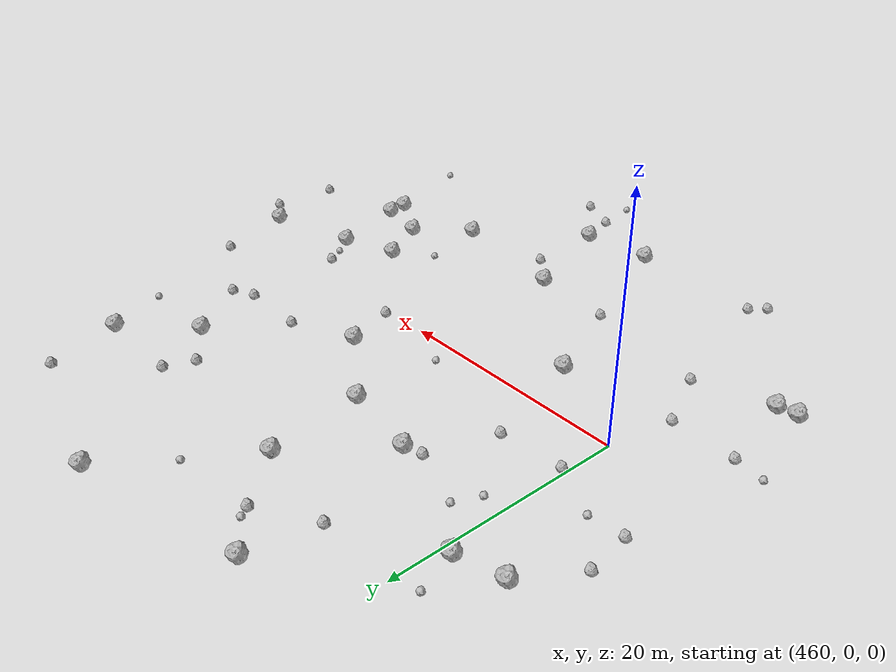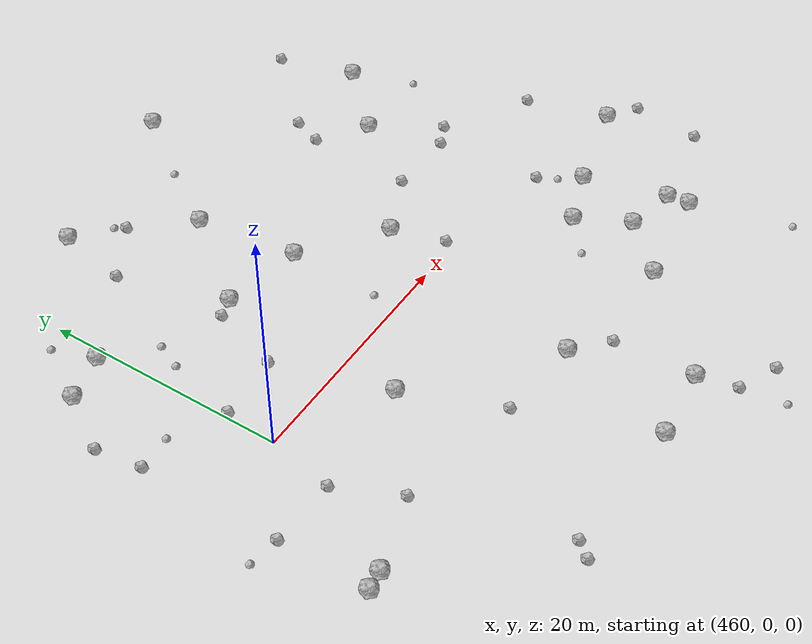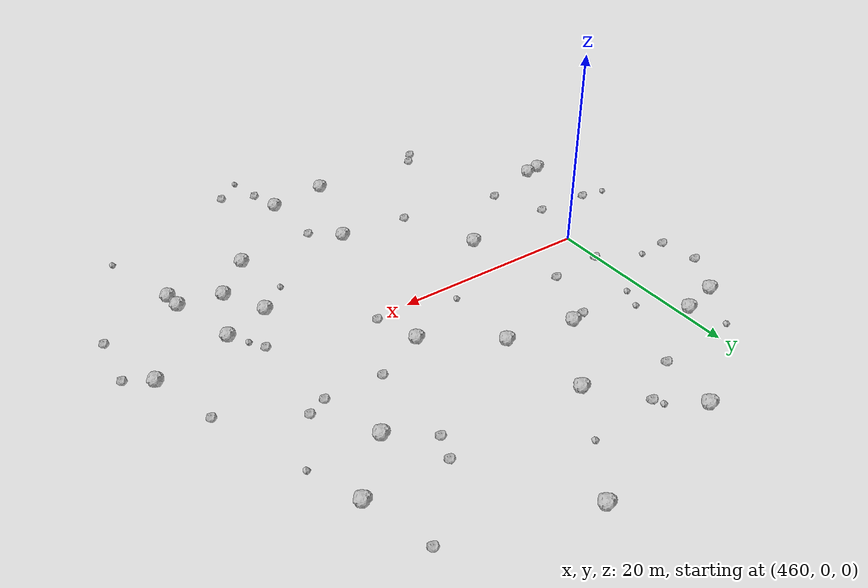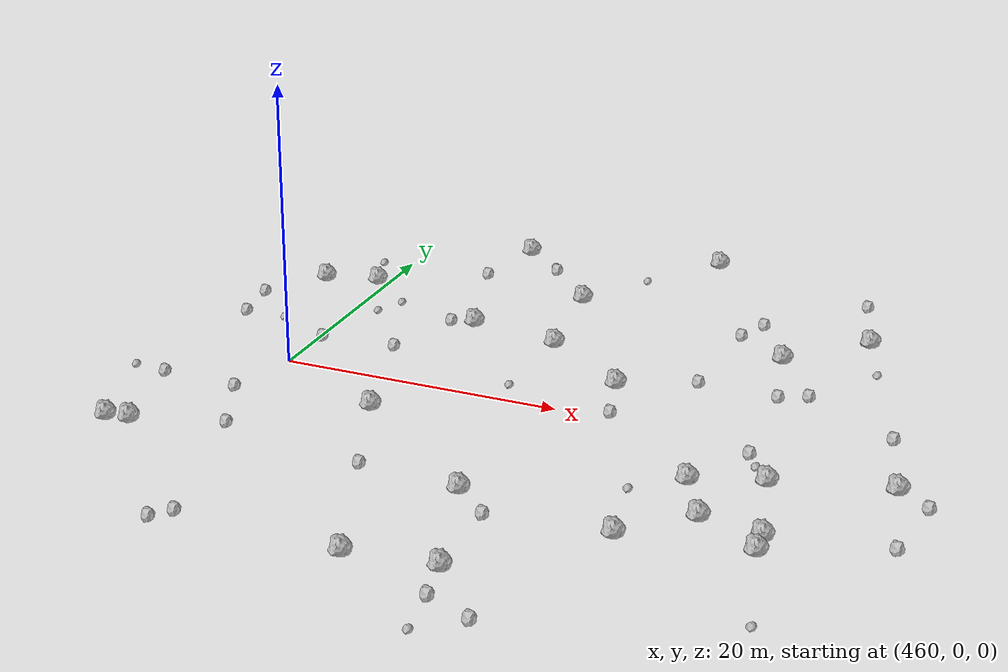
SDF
<sdf version="1.6">
 <world name="default">
  <include><uri>model://sun</uri></include>
  <model name="rock1_12_4">
   <include><uri>model://rock1</uri><pose>482.1966290395995 28.850561547476033 0.5 0 0 0</pose></include>
  </model>
  <model name="rock1_12_5">
   <include><uri>model://rock1</uri><pose>493.6389612446746 -10.780546383256603 0.5 0 0 0</pose></include>
  </model>
  <model name="rock1_12_6">
   <include><uri>model://rock1</uri><pose>468.69993092221745 -4.6612003095714165 0.5 0 0 0</pose></include>
  </model>
  <model name="rock1_12_7">
   <include><uri>model://rock1</uri><pose>491.75721829863306 13.38210843581227 0.5 0 0 0</pose></include>
  </model>
  <model name="rock1_12_8">
   <include><uri>model://rock1</uri><pose>479.00186156781956 -13.19277786427659 0.5 0 0 0</pose></include>
  </model>
  <model name="rock1_12_9">
   <include><uri>model://rock1</uri><pose>496.11015396951876 -4.837555121828878 0.5 0 0 0</pose></include>
  </model>
  <model name="rock1_12_10">
   <include><uri>model://rock1</uri><pose>469.32331682171764 10.961606223041677 0.5 0 0 0</pose></include>
  </model>
  <model name="rock1_12_11">
   <include><uri>model://rock1</uri><pose>482.48914443550166 4.974314432342176 0.5 0 0 0</pose></include>
  </model>
  <model name="rock1_12_12">
   <include><uri>model://rock1</uri><pose>467.71543211184564 25.68524988518422 0.5 0 0 0</pose></include>
  </model>
  <model name="rock1_12_13">
   <include><uri>model://rock1</uri><pose>455.34807120324444 14.58411283160143 0.5 0 0 0</pose></include>
  </model>
  <model name="rock1_12_14">
   <include><uri>model://rock1</uri><pose>453.31198091118523 -12.83398935476368 0.5 0 0 0</pose></include>
  </model>
  <model name="rock1_12_15">
   <include><uri>model://rock1</uri><pose>475.92490523674167 -23.002109333862908 0.5 0 0 0</pose></include>
  </model>
  <model name="rock1_12_16">
   <include><uri>model://rock1</uri><pose>476.05276062729695 9.74722611371108 0.5 0 0 0</pose></include>
  </model>
  <model name="rock1_12_17">
   <include><uri>model://rock1</uri><pose>474.93980466612635 18.210190255583036 0.5 0 0 0</pose></include>
  </model>
  <model name="rock1_12_18">
   <include><uri>model://rock1</uri><pose>503.8340291413787 -2.785891824076373 0.5 0 0 0</pose></include>
  </model>
  <model name="rock1_12_19">
   <include><uri>model://rock1</uri><pose>498.0644893507837 -13.46130144018132 0.5 0 0 0</pose></include>
  </model>
  <model name="rock1_12_20">
   <include><uri>model://rock1</uri><pose>496.7199130924115 18.436218928537457 0.5 0 0 0</pose></include>
  </model>
  <model name="rock1_12_21">
   <include><uri>model://rock1</uri><pose>459.22456051971574 15.56270671613595 0.5 0 0 0</pose></include>
  </model>
  <model name="rock1_12_22">
   <include><uri>model://rock1</uri><pose>481.95152666970756 -22.29958813827978 0.5 0 0 0</pose></include>
  </model>
  <model name="rock1_12_23">
   <include><uri>model://rock1</uri><pose>491.49430176844965 -6.510977997314164 0.5 0 0 0</pose></include>
  </model>
  <model name="rock1_12_24">
   <include><uri>model://rock1</uri><pose>497.88813927406665 -11.633376555462075 0.5 0 0 0</pose></include>
  </model>
  <model name="rock1_12_25">
   <include><uri>model://rock1</uri><pose>454.9498783353145 -12.603237590654995 0.5 0 0 0</pose></include>
  </model>
  <model name="rock1_12_26">
   <include><uri>model://rock1</uri><pose>489.7048990839975 -14.738992171495278 0.5 0 0 0</pose></include>
  </model>
  <model name="rock2_12_0">
   <include><uri>model://rock2</uri><pose>461.1716791595725 -10.639180033334203 0.3 0 0 0</pose></include>
  </model>
  <model name="rock2_12_1">
   <include><uri>model://rock2</uri><pose>471.826069032921 -12.494517705293283 0.3 0 0 0</pose></include>
  </model>
  <model name="rock2_12_2">
   <include><uri>model://rock2</uri><pose>488.85034958137857 18.61327255032787 0.3 0 0 0</pose></include>
  </model>
  <model name="rock2_12_3">
   <include><uri>model://rock2</uri><pose>494.9104485954441 24.837095762477503 0.3 0 0 0</pose></include>
  </model>
  <model name="rock2_12_4">
   <include><uri>model://rock2</uri><pose>460.37226506018857 4.356352013930348 0.3 0 0 0</pose></include>
  </model>
  <model name="rock2_12_5">
   <include><uri>model://rock2</uri><pose>453.05366133490145 6.3726359932887675 0.3 0 0 0</pose></include>
  </model>
  <model name="rock2_12_6">
   <include><uri>model://rock2</uri><pose>465.83360738653596 4.807564355875499 0.3 0 0 0</pose></include>
  </model>
  <model name="rock2_12_7">
   <include><uri>model://rock2</uri><pose>487.9103578230798 16.15134536705463 0.3 0 0 0</pose></include>
  </model>
  <model name="rock2_12_8">
   <include><uri>model://rock2</uri><pose>464.42504045681153 -22.43831758124604 0.3 0 0 0</pose></include>
  </model>
  <model name="rock2_12_9">
   <include><uri>model://rock2</uri><pose>495.14348737617786 8.101366058671523 0.3 0 0 0</pose></include>
  </model>
  <model name="rock2_12_10">
   <include><uri>model://rock2</uri><pose>452.4836151971601 10.187958372330534 0.3 0 0 0</pose></include>
  </model>
  <model name="rock2_12_11">
   <include><uri>model://rock2</uri><pose>487.6082352411708 7.364463702685114 0.3 0 0 0</pose></include>
  </model>
  <model name="rock2_12_12">
   <include><uri>model://rock2</uri><pose>463.37708556720395 -23.69597545266472 0.3 0 0 0</pose></include>
  </model>
  <model name="rock2_12_13">
   <include><uri>model://rock2</uri><pose>485.8893374920317 -26.94890488565675 0.3 0 0 0</pose></include>
  </model>
  <model name="rock2_12_14">
   <include><uri>model://rock2</uri><pose>493.2479153379434 7.209469231414978 0.3 0 0 0</pose></include>
  </model>
  <model name="rock2_12_15">
   <include><uri>model://rock2</uri><pose>471.0927806909728 22.649957624045257 0.3 0 0 0</pose></include>
  </model>
  <model name="rock2_12_16">
   <include><uri>model://rock2</uri><pose>481.6466021867137 -15.588925772567901 0.3 0 0 0</pose></include>
  </model>
  <model name="rock2_12_17">
   <include><uri>model://rock2</uri><pose>505.5419340591432 -10.099222756460737 0.3 0 0 0</pose></include>
  </model>
  <model name="rock2_12_18">
   <include><uri>model://rock2</uri><pose>506.13391171988616 -4.434704976054871 0.3 0 0 0</pose></include>
  </model>
  <model name="rock2_12_19">
   <include><uri>model://rock2</uri><pose>458.8354024431453 -5.5060730522923365 0.3 0 0 0</pose></include>
  </model>
  <model name="rock2_12_20">
   <include><uri>model://rock2</uri><pose>493.99167566640705 -1.6063333631656356 0.3 0 0 0</pose></include>
  </model>
  <model name="rock2_12_21">
   <include><uri>model://rock2</uri><pose>501.90997569568145 3.9529986860619957 0.3 0 0 0</pose></include>
  </model>
  <model name="rock2_12_22">
   <include><uri>model://rock2</uri><pose>453.2453992745303 -5.282012940052855 0.3 0 0 0</pose></include>
  </model>
  <model name="rock2_12_23">
   <include><uri>model://rock2</uri><pose>483.7271413427972 0.5977464722025232 0.3 0 0 0</pose></include>
  </model>
  <model name="rock2_12_24">
   <include><uri>model://rock2</uri><pose>482.6642224004585 -25.504727874260606 0.3 0 0 0</pose></include>
  </model>
  <model name="rock2_12_25">
   <include><uri>model://rock2</uri><pose>467.677262277085 10.530674586073033 0.3 0 0 0</pose></include>
  </model>
  <model name="rock2_12_26">
   <include><uri>model://rock2</uri><pose>466.51888714223475 19.879129093372356 0.3 0 0 0</pose></include>
  </model>
  <model name="rock3_12_0">
   <include><uri>model://rock3</uri><pose>450.6363572388615 -4.948752156167885 0.2 0 0 0</pose></include>
  </model>
  <model name="rock3_12_1">
   <include><uri>model://rock3</uri><pose>457.9973327463455 19.041497214543256 0.2 0 0 0</pose></include>
  </model>
  <model name="rock3_12_2">
   <include><uri>model://rock3</uri><pose>483.1716248050594 -29.179903376326187 0.2 0 0 0</pose></include>
  </model>
  <model name="rock3_12_3">
   <include><uri>model://rock3</uri><pose>462.7457823358696 12.363315235752616 0.2 0 0 0</pose></include>
  </model>
  <model name="rock3_12_4">
   <include><uri>model://rock3</uri><pose>470.5756393155151 23.44812370009973 0.2 0 0 0</pose></include>
  </model>
  <model name="rock3_12_5">
   <include><uri>model://rock3</uri><pose>478.1544946416846 23.382696779879133 0.2 0 0 0</pose></include>
  </model>
  <model name="rock3_12_6">
   <include><uri>model://rock3</uri><pose>494.829598299357 -3.1751533730150925 0.2 0 0 0</pose></include>
  </model>
  <model name="rock3_12_7">
   <include><uri>model://rock3</uri><pose>475.79950495837625 2.0411044787052433 0.2 0 0 0</pose></include>
  </model>
  <model name="rock3_12_8">
   <include><uri>model://rock3</uri><pose>500.2439010819586 -21.620550215662476 0.2 0 0 0</pose></include>
  </model>
  <model name="rock3_12_9">
   <include><uri>model://rock3</uri><pose>488.4599029036315 -9.032262759757398 0.2 0 0 0</pose></include>
  </model>
  <model name="rock3_12_10">
   <include><uri>model://rock3</uri><pose>461.8002752957567 10.244904079196978 0.2 0 0 0</pose></include>
  </model>
  <model name="rock3_12_11">
   <include><uri>model://rock3</uri><pose>498.4548899928482 13.311854390911833 0.2 0 0 0</pose></include>
  </model>
  <model name="rock3_12_12">
   <include><uri>model://rock3</uri><pose>456.0377414807057 6.521377545820705 0.2 0 0 0</pose></include>
  </model>
  <model name="rock3_12_13">
   <include><uri>model://rock3</uri><pose>474.64776675097704 18.346434671335246 0.2 0 0 0</pose></include>
  </model>
 </world>
</sdf>
